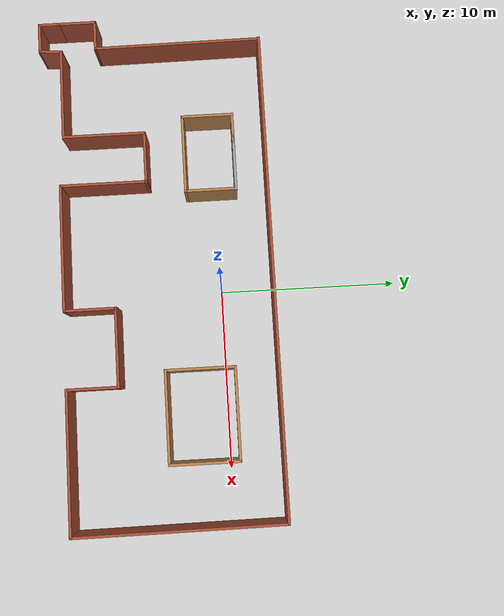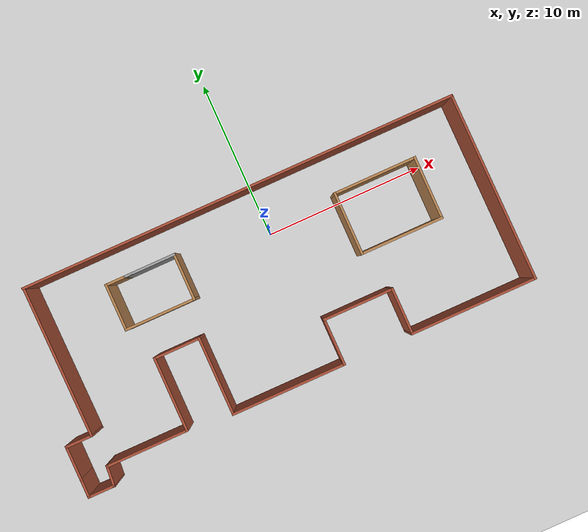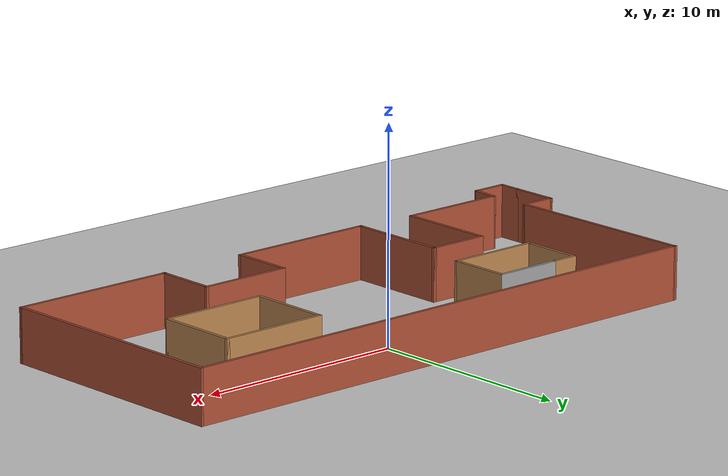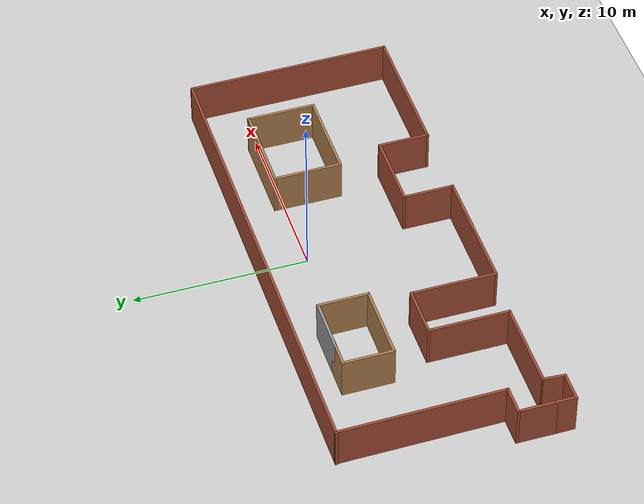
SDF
<sdf version="1.7">
 <world name="default">
  <light name="sun" type="directional">
   <pose>0 0 10 0 -0 0</pose>
   <diffuse>0.8 0.8 0.8 1</diffuse>
   <specular>0.2 0.2 0.2 1</specular>
   <attenuation>
    <range>1000</range>
    <constant>0.9</constant>
    <linear>0.01</linear>
    <quadratic>0.001</quadratic>
   </attenuation>
   <direction>-0.5 0.1 -0.9</direction>
   <spot><inner_angle>0</inner_angle><outer_angle>0</outer_angle><falloff>0</falloff></spot>
  </light>
  <model name="ground_plane">
   <static>1</static>
   <link name="link">
    <collision name="collision">
     <geometry><plane><normal>0 0 1</normal><size>100 100</size></plane></geometry>
     <surface>
      <contact><collide_bitmask>65535</collide_bitmask></contact>
      <friction><ode><mu>100</mu><mu2>50</mu2></ode></friction>
     </surface>
    </collision>
    <visual name="visual">
     <cast_shadows>0</cast_shadows>
     <geometry><plane><normal>0 0 1</normal><size>100 100</size></plane></geometry>
     <material>
      <script><uri>file://media/materials/scripts/gazebo.material</uri><name>Gazebo/Grey</name></script>
     </material>
    </visual>
   </link>
  </model>
  <gravity>0 0 -9.8</gravity>
  <magnetic_field>6e-06 2.3e-05 -4.2e-05</magnetic_field>
  <atmosphere type="adiabatic"/>
  <physics type="ode">
   <max_step_size>0.001</max_step_size>
   <real_time_factor>1</real_time_factor>
   <real_time_update_rate>1000</real_time_update_rate>
  </physics>
  <scene><ambient>0.4 0.4 0.4 1</ambient><background>0.7 0.7 0.7 1</background><shadows>1</shadows></scene>
  <spherical_coordinates>
   <surface_model>EARTH_WGS84</surface_model>
   <latitude_deg>0</latitude_deg>
   <longitude_deg>0</longitude_deg>
   <elevation>0</elevation>
   <heading_deg>0</heading_deg>
  </spherical_coordinates>
  <model name="myworld.world">
   <pose>-1.45537 -3.40624 0 0 -0 0</pose>
   <link name="Wall_1">
    <collision name="Wall_1_Collision">
     <geometry><box><size>27.5 0.15 2.5</size></box></geometry>
     <pose>0 0 1.25 0 -0 0</pose>
    </collision>
    <visual name="Wall_1_Visual">
     <pose>0 0 1.25 0 -0 0</pose>
     <geometry><box><size>27.5 0.15 2.5</size></box></geometry>
     <material>
      <script><uri>file://media/materials/scripts/gazebo.material</uri><name>Gazebo/Bricks</name></script>
      <ambient>1 1 1 1</ambient>
     </material>
     <meta><layer>0</layer></meta>
    </visual>
    <pose>0.678375 6.33361 0 0 -0 0</pose>
   </link>
   <link name="Wall_10">
    <collision name="Wall_10_Collision">
     <geometry><box><size>4.75 0.15 2.5</size></box></geometry>
     <pose>0 0 1.25 0 -0 0</pose>
    </collision>
    <visual name="Wall_10_Visual">
     <pose>0 0 1.25 0 -0 0</pose>
     <geometry><box><size>4.75 0.15 2.5</size></box></geometry>
     <material>
      <script><uri>file://media/materials/scripts/gazebo.material</uri><name>Gazebo/Bricks</name></script>
      <ambient>1 1 1 1</ambient>
     </material>
     <meta><layer>0</layer></meta>
    </visual>
    <pose>-7.67526 -2.82833 0 0 -0 -1.5708</pose>
   </link>
   <link name="Wall_11">
    <collision name="Wall_11_Collision">
     <geometry><box><size>5.25 0.15 2.5</size></box></geometry>
     <pose>0 0 1.25 0 -0 0</pose>
    </collision>
    <visual name="Wall_11_Visual">
     <pose>0 0 1.25 0 -0 0</pose>
     <geometry><box><size>5.25 0.15 2.5</size></box></geometry>
     <material>
      <script><uri>file://media/materials/scripts/gazebo.material</uri><name>Gazebo/Bricks</name></script>
      <ambient>1 1 1 1</ambient>
     </material>
     <meta><layer>0</layer></meta>
    </visual>
    <pose>-10.2253 -5.12833 0 0 -0 3.14159</pose>
   </link>
   <link name="Wall_13">
    <collision name="Wall_13_Collision">
     <geometry><box><size>9.61228 0.15 2.5</size></box></geometry>
     <pose>0 0 1.25 0 -0 0</pose>
    </collision>
    <visual name="Wall_13_Visual">
     <pose>0 0 1.25 0 -0 0</pose>
     <geometry><box><size>9.61228 0.15 2.5</size></box></geometry>
     <material>
      <script><uri>file://media/materials/scripts/gazebo.material</uri><name>Gazebo/Bricks</name></script>
      <ambient>1 1 1 1</ambient>
     </material>
     <meta><layer>0</layer></meta>
    </visual>
    <pose>-12.9157 1.60264 0 0 -0 -1.56225</pose>
   </link>
   <link name="Wall_14">
    <collision name="Wall_14_Collision">
     <geometry><box><size>1.75 0.15 2.5</size></box></geometry>
     <pose>0 0 1.25 0 -0 0</pose>
    </collision>
    <visual name="Wall_14_Visual">
     <pose>0 0 1.25 0 -0 0</pose>
     <geometry><box><size>1.75 0.15 2.5</size></box></geometry>
     <material>
      <script><uri>file://media/materials/scripts/gazebo.material</uri><name>Gazebo/Bricks</name></script>
      <ambient>1 1 1 1</ambient>
     </material>
     <meta><layer>0</layer></meta>
    </visual>
    <pose>-13.6753 -3.12833 0 0 -0 3.14159</pose>
   </link>
   <link name="Wall_15">
    <collision name="Wall_15_Collision">
     <geometry><box><size>2.25 0.15 2.5</size></box></geometry>
     <pose>0 0 1.25 0 -0 0</pose>
    </collision>
    <visual name="Wall_15_Visual">
     <pose>0 0 1.25 0 -0 0</pose>
     <geometry><box><size>2.25 0.15 2.5</size></box></geometry>
     <material>
      <script><uri>file://media/materials/scripts/gazebo.material</uri><name>Gazebo/Bricks</name></script>
      <ambient>1 1 1 1</ambient>
     </material>
     <meta><layer>0</layer></meta>
    </visual>
    <pose>-14.4753 -4.17833 0 0 -0 -1.5708</pose>
   </link>
   <link name="Wall_16">
    <collision name="Wall_16_Collision">
     <geometry><box><size>1.25 0.15 2.5</size></box></geometry>
     <pose>0 0 1.25 0 -0 0</pose>
    </collision>
    <visual name="Wall_16_Visual">
     <pose>0 0 1.25 0 -0 0</pose>
     <geometry><box><size>1.25 0.15 2.5</size></box></geometry>
     <material>
      <script><uri>file://media/materials/scripts/gazebo.material</uri><name>Gazebo/Bricks</name></script>
      <ambient>1 1 1 1</ambient>
     </material>
     <meta><layer>0</layer></meta>
    </visual>
    <pose>-14.4753 -5.77833 0 0 -0 -1.5708</pose>
   </link>
   <link name="Wall_17">
    <collision name="Wall_17_Collision">
     <geometry><box><size>1.75 0.15 2.5</size></box></geometry>
     <pose>0 0 1.25 0 -0 0</pose>
    </collision>
    <visual name="Wall_17_Visual">
     <pose>0 0 1.25 0 -0 0</pose>
     <geometry><box><size>1.75 0.15 2.5</size></box></geometry>
     <material>
      <script><uri>file://media/materials/scripts/gazebo.material</uri><name>Gazebo/Bricks</name></script>
      <ambient>1 1 1 1</ambient>
     </material>
     <meta><layer>0</layer></meta>
    </visual>
    <pose>-13.6753 -6.32833 0 0 -0 0</pose>
   </link>
   <link name="Wall_18">
    <collision name="Wall_18_Collision">
     <geometry><box><size>1.35416 0.15 2.5</size></box></geometry>
     <pose>0 0 1.25 0 -0 0</pose>
    </collision>
    <visual name="Wall_18_Visual">
     <pose>0 0 1.25 0 -0 0</pose>
     <geometry><box><size>1.35416 0.15 2.5</size></box></geometry>
     <material>
      <script><uri>file://media/materials/scripts/gazebo.material</uri><name>Gazebo/Bricks</name></script>
      <ambient>1 1 1 1</ambient>
     </material>
     <meta><layer>0</layer></meta>
    </visual>
    <pose>-12.8253 -5.72833 0 0 -0 1.48765</pose>
   </link>
   <link name="Wall_2">
    <collision name="Wall_2_Collision">
     <geometry><box><size>11.8626 0.15 2.5</size></box></geometry>
     <pose>0 0 1.25 0 -0 0</pose>
    </collision>
    <visual name="Wall_2_Visual">
     <pose>0 0 1.25 0 -0 0</pose>
     <geometry><box><size>11.8626 0.15 2.5</size></box></geometry>
     <material>
      <script><uri>file://media/materials/scripts/gazebo.material</uri><name>Gazebo/Bricks</name></script>
      <ambient>1 1 1 1</ambient>
     </material>
     <meta><layer>0</layer></meta>
    </visual>
    <pose>14.4343 0.477639 0 0 -0 -1.56389</pose>
   </link>
   <link name="Wall_20">
    <collision name="Wall_20_Collision">
     <geometry><box><size>3.25 0.15 2.5</size></box></geometry>
     <pose>0 0 1.25 0 -0 0</pose>
    </collision>
    <visual name="Wall_20_Visual">
     <pose>0 0 1.25 0 -0 0</pose>
     <geometry><box><size>3.25 0.15 2.5</size></box></geometry>
     <material>
      <script><uri>file://media/materials/scripts/gazebo.material</uri><name>Gazebo/Grey</name></script>
      <ambient>1 1 1 1</ambient>
     </material>
     <meta><layer>0</layer></meta>
    </visual>
    <pose>-5.70069 4.52963 0 0 -0 0</pose>
   </link>
   <link name="Wall_21">
    <collision name="Wall_21_Collision">
     <geometry><box><size>3 0.15 2.5</size></box></geometry>
     <pose>0 0 1.25 0 -0 0</pose>
    </collision>
    <visual name="Wall_21_Visual">
     <pose>0 0 1.25 0 -0 0</pose>
     <geometry><box><size>3 0.15 2.5</size></box></geometry>
     <material>
      <script><uri>file://media/materials/scripts/gazebo.material</uri><name>Gazebo/Wood</name></script>
      <ambient>1 1 1 1</ambient>
     </material>
     <meta><layer>0</layer></meta>
    </visual>
    <pose>-4.15069 3.10462 0 0 -0 -1.5708</pose>
   </link>
   <link name="Wall_22">
    <collision name="Wall_22_Collision">
     <geometry><box><size>4.5 0.15 2.5</size></box></geometry>
     <pose>0 0 1.25 0 -0 0</pose>
    </collision>
    <visual name="Wall_22_Visual">
     <pose>0 0 1.25 0 -0 0</pose>
     <geometry><box><size>4.5 0.15 2.5</size></box></geometry>
     <material>
      <script><uri>file://media/materials/scripts/gazebo.material</uri><name>Gazebo/Wood</name></script>
      <ambient>1 1 1 1</ambient>
     </material>
     <meta><layer>0</layer></meta>
    </visual>
    <pose>-6.32569 1.67962 0 0 -0 3.14159</pose>
   </link>
   <link name="Wall_23">
    <collision name="Wall_23_Collision">
     <geometry><box><size>3 0.15 2.5</size></box></geometry>
     <pose>0 0 1.25 0 -0 0</pose>
    </collision>
    <visual name="Wall_23_Visual">
     <pose>0 0 1.25 0 -0 0</pose>
     <geometry><box><size>3 0.15 2.5</size></box></geometry>
     <material>
      <script><uri>file://media/materials/scripts/gazebo.material</uri><name>Gazebo/Wood</name></script>
      <ambient>1 1 1 1</ambient>
     </material>
     <meta><layer>0</layer></meta>
    </visual>
    <pose>-8.5007 3.10462 0 0 -0 1.5708</pose>
   </link>
   <link name="Wall_24">
    <collision name="Wall_24_Collision">
     <geometry><box><size>1.75 0.15 2.5</size></box></geometry>
     <pose>0 0 1.25 0 -0 0</pose>
    </collision>
    <visual name="Wall_24_Visual">
     <pose>0 0 1.25 0 -0 0</pose>
     <geometry><box><size>1.75 0.15 2.5</size></box></geometry>
     <material>
      <script><uri>file://media/materials/scripts/gazebo.material</uri><name>Gazebo/Wood</name></script>
      <ambient>1 1 1 1</ambient>
     </material>
     <meta><layer>0</layer></meta>
    </visual>
    <pose>-7.70069 4.52963 0 0 -0 0</pose>
   </link>
   <link name="Wall_26">
    <collision name="Wall_26_Collision">
     <geometry><box><size>4 0.15 2.5</size></box></geometry>
     <pose>0 0 1.25 0 -0 0</pose>
    </collision>
    <visual name="Wall_26_Visual">
     <pose>0 0 1.25 0 -0 0</pose>
     <geometry><box><size>4 0.15 2.5</size></box></geometry>
     <material>
      <script><uri>file://media/materials/scripts/gazebo.material</uri><name>Gazebo/Wood</name></script>
      <ambient>1 1 1 1</ambient>
     </material>
     <meta><layer>0</layer></meta>
    </visual>
    <pose>5.85691 1.99779 0 0 -0 -1.5708</pose>
   </link>
   <link name="Wall_27">
    <collision name="Wall_27_Collision">
     <geometry><box><size>5.25 0.15 2.5</size></box></geometry>
     <pose>0 0 1.25 0 -0 0</pose>
    </collision>
    <visual name="Wall_27_Visual">
     <pose>0 0 1.25 0 -0 0</pose>
     <geometry><box><size>5.25 0.15 2.5</size></box></geometry>
     <material>
      <script><uri>file://media/materials/scripts/gazebo.material</uri><name>Gazebo/Wood</name></script>
      <ambient>1 1 1 1</ambient>
     </material>
     <meta><layer>0</layer></meta>
    </visual>
    <pose>8.40691 0.072791 0 0 -0 0</pose>
   </link>
   <link name="Wall_28">
    <collision name="Wall_28_Collision">
     <geometry><box><size>4 0.15 2.5</size></box></geometry>
     <pose>0 0 1.25 0 -0 0</pose>
    </collision>
    <visual name="Wall_28_Visual">
     <pose>0 0 1.25 0 -0 0</pose>
     <geometry><box><size>4 0.15 2.5</size></box></geometry>
     <material>
      <script><uri>file://media/materials/scripts/gazebo.material</uri><name>Gazebo/Wood</name></script>
      <ambient>1 1 1 1</ambient>
     </material>
     <meta><layer>0</layer></meta>
    </visual>
    <pose>10.9569 1.99779 0 0 -0 1.5708</pose>
   </link>
   <link name="Wall_29">
    <collision name="Wall_29_Collision">
     <geometry><box><size>5.25 0.15 2.5</size></box></geometry>
     <pose>0 0 1.25 0 -0 0</pose>
    </collision>
    <visual name="Wall_29_Visual">
     <pose>0 0 1.25 0 -0 0</pose>
     <geometry><box><size>5.25 0.15 2.5</size></box></geometry>
     <material>
      <script><uri>file://media/materials/scripts/gazebo.material</uri><name>Gazebo/Wood</name></script>
      <ambient>1 1 1 1</ambient>
     </material>
     <meta><layer>0</layer></meta>
    </visual>
    <pose>8.40691 3.92279 0 0 -0 3.14159</pose>
   </link>
   <link name="Wall_3">
    <collision name="Wall_3_Collision">
     <geometry><box><size>8 0.15 2.5</size></box></geometry>
     <pose>0 0 1.25 0 -0 0</pose>
    </collision>
    <visual name="Wall_3_Visual">
     <pose>0 0 1.25 0 -0 0</pose>
     <geometry><box><size>8 0.15 2.5</size></box></geometry>
     <material>
      <script><uri>file://media/materials/scripts/gazebo.material</uri><name>Gazebo/Bricks</name></script>
      <ambient>1 1 1 1</ambient>
     </material>
     <meta><layer>0</layer></meta>
    </visual>
    <pose>10.5497 -5.37833 0 0 -0 3.14159</pose>
   </link>
   <link name="Wall_4">
    <collision name="Wall_4_Collision">
     <geometry><box><size>3 0.15 2.5</size></box></geometry>
     <pose>0 0 1.25 0 -0 0</pose>
    </collision>
    <visual name="Wall_4_Visual">
     <pose>0 0 1.25 0 -0 0</pose>
     <geometry><box><size>3 0.15 2.5</size></box></geometry>
     <material>
      <script><uri>file://media/materials/scripts/gazebo.material</uri><name>Gazebo/Bricks</name></script>
      <ambient>1 1 1 1</ambient>
     </material>
     <meta><layer>0</layer></meta>
    </visual>
    <pose>6.62474 -3.95333 0 0 -0 1.5708</pose>
   </link>
   <link name="Wall_5">
    <collision name="Wall_5_Collision">
     <geometry><box><size>4.5 0.15 2.5</size></box></geometry>
     <pose>0 0 1.25 0 -0 0</pose>
    </collision>
    <visual name="Wall_5_Visual">
     <pose>0 0 1.25 0 -0 0</pose>
     <geometry><box><size>4.5 0.15 2.5</size></box></geometry>
     <material>
      <script><uri>file://media/materials/scripts/gazebo.material</uri><name>Gazebo/Bricks</name></script>
      <ambient>1 1 1 1</ambient>
     </material>
     <meta><layer>0</layer></meta>
    </visual>
    <pose>4.44974 -2.52833 0 0 -0 3.14159</pose>
   </link>
   <link name="Wall_6">
    <collision name="Wall_6_Collision">
     <geometry><box><size>3 0.15 2.5</size></box></geometry>
     <pose>0 0 1.25 0 -0 0</pose>
    </collision>
    <visual name="Wall_6_Visual">
     <pose>0 0 1.25 0 -0 0</pose>
     <geometry><box><size>3 0.15 2.5</size></box></geometry>
     <material>
      <script><uri>file://media/materials/scripts/gazebo.material</uri><name>Gazebo/Bricks</name></script>
      <ambient>1 1 1 1</ambient>
     </material>
     <meta><layer>0</layer></meta>
    </visual>
    <pose>2.27474 -3.95333 0 0 -0 -1.5708</pose>
   </link>
   <link name="Wall_7">
    <collision name="Wall_7_Collision">
     <geometry><box><size>7.25 0.15 2.5</size></box></geometry>
     <pose>0 0 1.25 0 -0 0</pose>
    </collision>
    <visual name="Wall_7_Visual">
     <pose>0 0 1.25 0 -0 0</pose>
     <geometry><box><size>7.25 0.15 2.5</size></box></geometry>
     <material>
      <script><uri>file://media/materials/scripts/gazebo.material</uri><name>Gazebo/Bricks</name></script>
      <ambient>1 1 1 1</ambient>
     </material>
     <meta><layer>0</layer></meta>
    </visual>
    <pose>-1.27526 -5.37833 0 0 -0 3.14159</pose>
   </link>
   <link name="Wall_8">
    <collision name="Wall_8_Collision">
     <geometry><box><size>5 0.15 2.5</size></box></geometry>
     <pose>0 0 1.25 0 -0 0</pose>
    </collision>
    <visual name="Wall_8_Visual">
     <pose>0 0 1.25 0 -0 0</pose>
     <geometry><box><size>5 0.15 2.5</size></box></geometry>
     <material>
      <script><uri>file://media/materials/scripts/gazebo.material</uri><name>Gazebo/Bricks</name></script>
      <ambient>1 1 1 1</ambient>
     </material>
     <meta><layer>0</layer></meta>
    </visual>
    <pose>-4.82526 -2.95333 0 0 -0 1.5708</pose>
   </link>
   <link name="Wall_9">
    <collision name="Wall_9_Collision">
     <geometry><box><size>3 0.15 2.5</size></box></geometry>
     <pose>0 0 1.25 0 -0 0</pose>
    </collision>
    <visual name="Wall_9_Visual">
     <pose>0 0 1.25 0 -0 0</pose>
     <geometry><box><size>3 0.15 2.5</size></box></geometry>
     <material>
      <script><uri>file://media/materials/scripts/gazebo.material</uri><name>Gazebo/Bricks</name></script>
      <ambient>1 1 1 1</ambient>
     </material>
     <meta><layer>0</layer></meta>
    </visual>
    <pose>-6.25026 -0.528329 0 0 -0 3.14159</pose>
   </link>
   <static>1</static>
  </model>
 </world>
</sdf>
